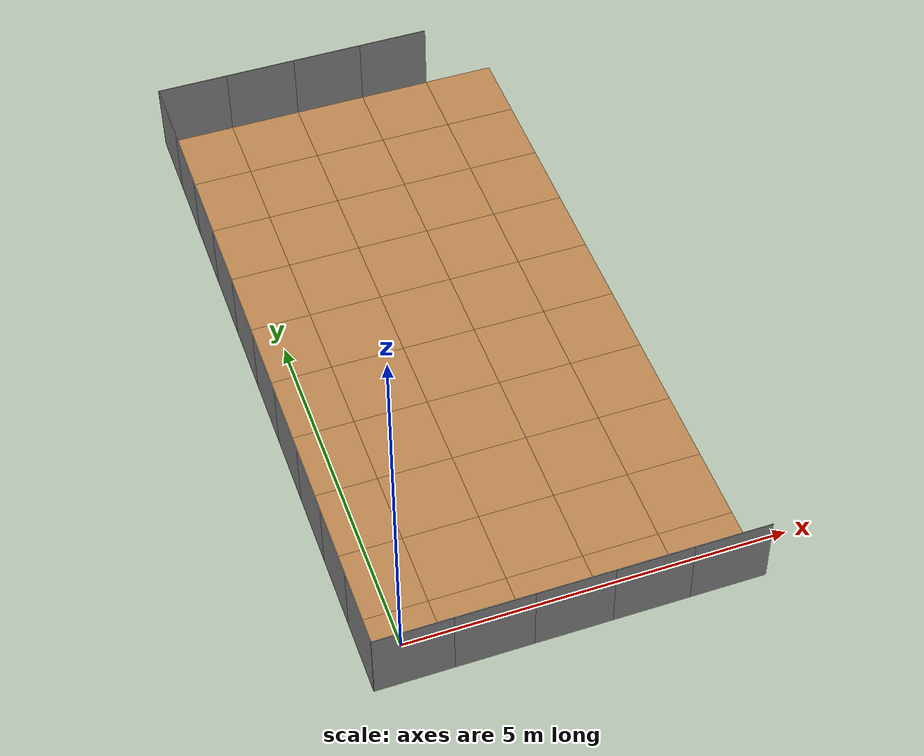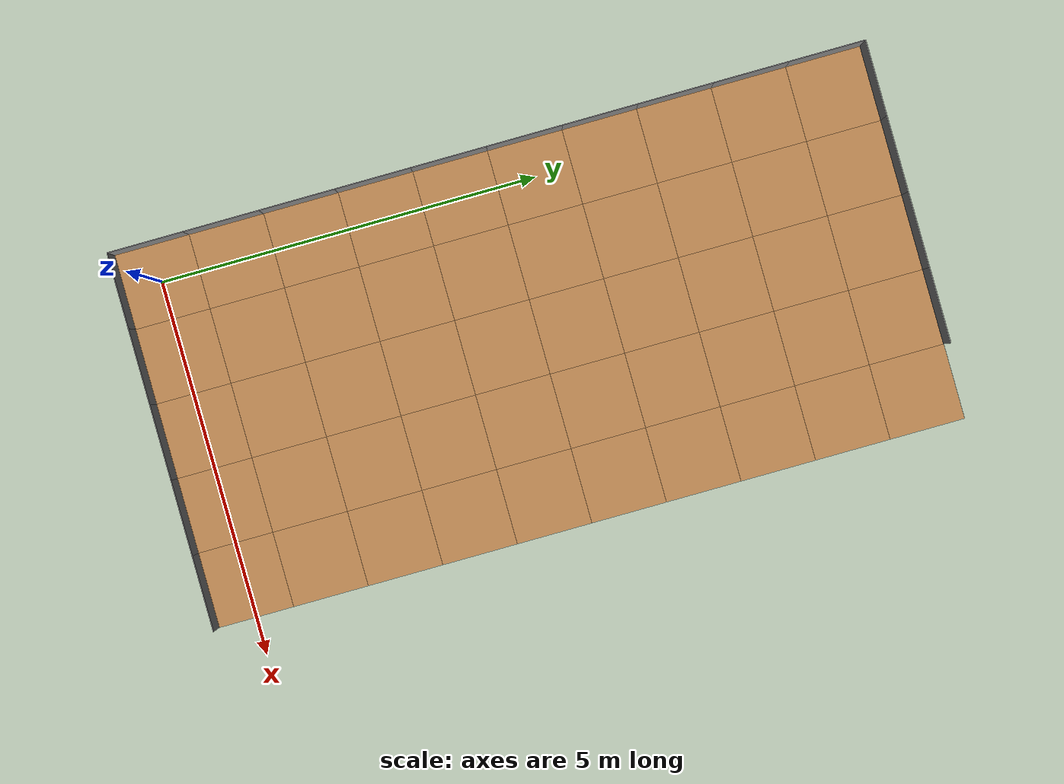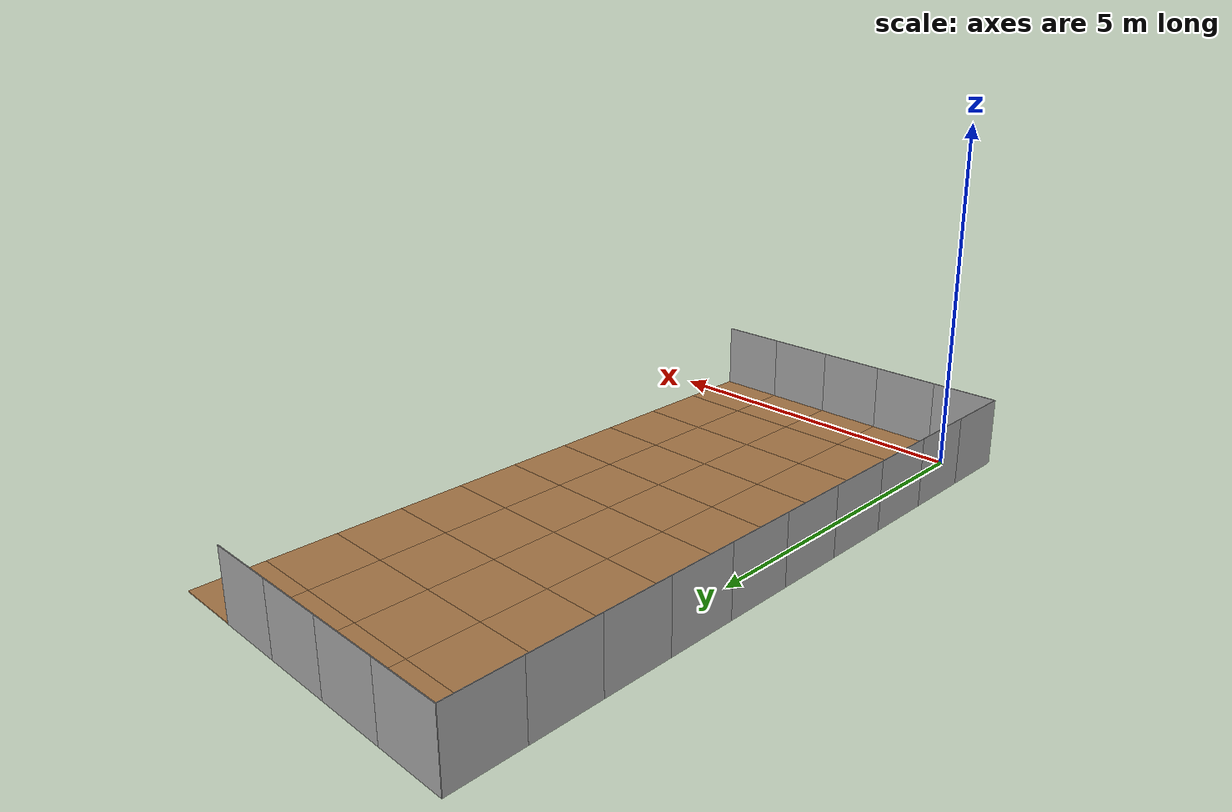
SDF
<sdf version="1.5">
 <world name="complexai">
  <include><uri>model://sun</uri></include>
  <model name="floor_0_0_Berlin_Storage_StorageRoom_1">
   <static>true</static>
   <link name="link_floor_0_0_Berlin_Storage_StorageRoom_1">
    <collision name="collisionfloor_0_0_Berlin_Storage_StorageRoom_1">
     <geometry><box><size>1.0 1.0 0.01</size></box></geometry>
    </collision>
    <visual name="visualfloor_0_0_Berlin_Storage_StorageRoom_1">
     <geometry><box><size>1.0 1.0 0.01</size></box></geometry>
     <material>
      <script><uri>file://media/materials/scripts/gazebo.material</uri><name>Gazebo/WoodFloor</name></script>
     </material>
    </visual>
   </link>
  </model>
  <model name="wall_left_0_0_Berlin_Storage_StorageRoom_1">
   <pose>-0.5 0.0 0.5 0.0 0.0 1.5707963</pose>
   <static>true</static>
   <link name="link_wall_left_0_0_Berlin_Storage_StorageRoom_1">
    <collision name="collisionwall_left_0_0_Berlin_Storage_StorageRoom_1">
     <geometry><box><size>1.0 0.01 1.0</size></box></geometry>
    </collision>
    <visual name="visualwall_left_0_0_Berlin_Storage_StorageRoom_1">
     <geometry><box><size>1.0 0.01 1.0</size></box></geometry>
     <material>
      <script><uri>file://media/materials/scripts/gazebo.material</uri><name>Gazebo/Grey</name></script>
     </material>
    </visual>
   </link>
  </model>
  <model name="wall_bottom_0_0_Berlin_Storage_StorageRoom_1">
   <pose>0.0 -0.5 0.5 0.0 0.0 0.0</pose>
   <static>true</static>
   <link name="link_wall_bottom_0_0_Berlin_Storage_StorageRoom_1">
    <collision name="collisionwall_bottom_0_0_Berlin_Storage_StorageRoom_1">
     <geometry><box><size>1.0 0.01 1.0</size></box></geometry>
    </collision>
    <visual name="visualwall_bottom_0_0_Berlin_Storage_StorageRoom_1">
     <geometry><box><size>1.0 0.01 1.0</size></box></geometry>
     <material>
      <script><uri>file://media/materials/scripts/gazebo.material</uri><name>Gazebo/Grey</name></script>
     </material>
    </visual>
   </link>
  </model>
  <model name="floor_0_1_Berlin_Storage_StorageRoom_1">
   <pose>0.0 1.0 0.0 0.0 0.0 0.0</pose>
   <static>true</static>
   <link name="link_floor_0_1_Berlin_Storage_StorageRoom_1">
    <collision name="collisionfloor_0_1_Berlin_Storage_StorageRoom_1">
     <geometry><box><size>1.0 1.0 0.01</size></box></geometry>
    </collision>
    <visual name="visualfloor_0_1_Berlin_Storage_StorageRoom_1">
     <geometry><box><size>1.0 1.0 0.01</size></box></geometry>
     <material>
      <script><uri>file://media/materials/scripts/gazebo.material</uri><name>Gazebo/WoodFloor</name></script>
     </material>
    </visual>
   </link>
  </model>
  <model name="wall_left_0_1_Berlin_Storage_StorageRoom_1">
   <pose>-0.5 1.0 0.5 0.0 0.0 1.5707963</pose>
   <static>true</static>
   <link name="link_wall_left_0_1_Berlin_Storage_StorageRoom_1">
    <collision name="collisionwall_left_0_1_Berlin_Storage_StorageRoom_1">
     <geometry><box><size>1.0 0.01 1.0</size></box></geometry>
    </collision>
    <visual name="visualwall_left_0_1_Berlin_Storage_StorageRoom_1">
     <geometry><box><size>1.0 0.01 1.0</size></box></geometry>
     <material>
      <script><uri>file://media/materials/scripts/gazebo.material</uri><name>Gazebo/Grey</name></script>
     </material>
    </visual>
   </link>
  </model>
  <model name="floor_0_0_Berlin_Storage_StorageRoom_1">
   <static>true</static>
   <link name="link_floor_0_0_Berlin_Storage_StorageRoom_1">
    <collision name="collisionfloor_0_0_Berlin_Storage_StorageRoom_1">
     <geometry><box><size>1.0 1.0 0.01</size></box></geometry>
    </collision>
    <visual name="visualfloor_0_0_Berlin_Storage_StorageRoom_1">
     <geometry><box><size>1.0 1.0 0.01</size></box></geometry>
     <material>
      <script><uri>file://media/materials/scripts/gazebo.material</uri><name>Gazebo/WoodFloor</name></script>
     </material>
    </visual>
   </link>
  </model>
  <model name="wall_left_0_0_Berlin_Storage_StorageRoom_1">
   <pose>-0.5 0.0 0.5 0.0 0.0 1.5707963</pose>
   <static>true</static>
   <link name="link_wall_left_0_0_Berlin_Storage_StorageRoom_1">
    <collision name="collisionwall_left_0_0_Berlin_Storage_StorageRoom_1">
     <geometry><box><size>1.0 0.01 1.0</size></box></geometry>
    </collision>
    <visual name="visualwall_left_0_0_Berlin_Storage_StorageRoom_1">
     <geometry><box><size>1.0 0.01 1.0</size></box></geometry>
     <material>
      <script><uri>file://media/materials/scripts/gazebo.material</uri><name>Gazebo/Grey</name></script>
     </material>
    </visual>
   </link>
  </model>
  <model name="wall_bottom_0_0_Berlin_Storage_StorageRoom_1">
   <pose>0.0 -0.5 0.5 0.0 0.0 0.0</pose>
   <static>true</static>
   <link name="link_wall_bottom_0_0_Berlin_Storage_StorageRoom_1">
    <collision name="collisionwall_bottom_0_0_Berlin_Storage_StorageRoom_1">
     <geometry><box><size>1.0 0.01 1.0</size></box></geometry>
    </collision>
    <visual name="visualwall_bottom_0_0_Berlin_Storage_StorageRoom_1">
     <geometry><box><size>1.0 0.01 1.0</size></box></geometry>
     <material>
      <script><uri>file://media/materials/scripts/gazebo.material</uri><name>Gazebo/Grey</name></script>
     </material>
    </visual>
   </link>
  </model>
  <model name="floor_0_2_Berlin_Storage_StorageRoom_1">
   <pose>0.0 2.0 0.0 0.0 0.0 0.0</pose>
   <static>true</static>
   <link name="link_floor_0_2_Berlin_Storage_StorageRoom_1">
    <collision name="collisionfloor_0_2_Berlin_Storage_StorageRoom_1">
     <geometry><box><size>1.0 1.0 0.01</size></box></geometry>
    </collision>
    <visual name="visualfloor_0_2_Berlin_Storage_StorageRoom_1">
     <geometry><box><size>1.0 1.0 0.01</size></box></geometry>
     <material>
      <script><uri>file://media/materials/scripts/gazebo.material</uri><name>Gazebo/WoodFloor</name></script>
     </material>
    </visual>
   </link>
  </model>
  <model name="wall_left_0_2_Berlin_Storage_StorageRoom_1">
   <pose>-0.5 2.0 0.5 0.0 0.0 1.5707963</pose>
   <static>true</static>
   <link name="link_wall_left_0_2_Berlin_Storage_StorageRoom_1">
    <collision name="collisionwall_left_0_2_Berlin_Storage_StorageRoom_1">
     <geometry><box><size>1.0 0.01 1.0</size></box></geometry>
    </collision>
    <visual name="visualwall_left_0_2_Berlin_Storage_StorageRoom_1">
     <geometry><box><size>1.0 0.01 1.0</size></box></geometry>
     <material>
      <script><uri>file://media/materials/scripts/gazebo.material</uri><name>Gazebo/Grey</name></script>
     </material>
    </visual>
   </link>
  </model>
  <model name="floor_0_3_Berlin_Storage_StorageRoom_1">
   <pose>0.0 3.0 0.0 0.0 0.0 0.0</pose>
   <static>true</static>
   <link name="link_floor_0_3_Berlin_Storage_StorageRoom_1">
    <collision name="collisionfloor_0_3_Berlin_Storage_StorageRoom_1">
     <geometry><box><size>1.0 1.0 0.01</size></box></geometry>
    </collision>
    <visual name="visualfloor_0_3_Berlin_Storage_StorageRoom_1">
     <geometry><box><size>1.0 1.0 0.01</size></box></geometry>
     <material>
      <script><uri>file://media/materials/scripts/gazebo.material</uri><name>Gazebo/WoodFloor</name></script>
     </material>
    </visual>
   </link>
  </model>
  <model name="wall_left_0_3_Berlin_Storage_StorageRoom_1">
   <pose>-0.5 3.0 0.5 0.0 0.0 1.5707963</pose>
   <static>true</static>
   <link name="link_wall_left_0_3_Berlin_Storage_StorageRoom_1">
    <collision name="collisionwall_left_0_3_Berlin_Storage_StorageRoom_1">
     <geometry><box><size>1.0 0.01 1.0</size></box></geometry>
    </collision>
    <visual name="visualwall_left_0_3_Berlin_Storage_StorageRoom_1">
     <geometry><box><size>1.0 0.01 1.0</size></box></geometry>
     <material>
      <script><uri>file://media/materials/scripts/gazebo.material</uri><name>Gazebo/Grey</name></script>
     </material>
    </visual>
   </link>
  </model>
  <model name="floor_0_4_Berlin_Storage_StorageRoom_1">
   <pose>0.0 4.0 0.0 0.0 0.0 0.0</pose>
   <static>true</static>
   <link name="link_floor_0_4_Berlin_Storage_StorageRoom_1">
    <collision name="collisionfloor_0_4_Berlin_Storage_StorageRoom_1">
     <geometry><box><size>1.0 1.0 0.01</size></box></geometry>
    </collision>
    <visual name="visualfloor_0_4_Berlin_Storage_StorageRoom_1">
     <geometry><box><size>1.0 1.0 0.01</size></box></geometry>
     <material>
      <script><uri>file://media/materials/scripts/gazebo.material</uri><name>Gazebo/WoodFloor</name></script>
     </material>
    </visual>
   </link>
  </model>
  <model name="wall_left_0_4_Berlin_Storage_StorageRoom_1">
   <pose>-0.5 4.0 0.5 0.0 0.0 1.5707963</pose>
   <static>true</static>
   <link name="link_wall_left_0_4_Berlin_Storage_StorageRoom_1">
    <collision name="collisionwall_left_0_4_Berlin_Storage_StorageRoom_1">
     <geometry><box><size>1.0 0.01 1.0</size></box></geometry>
    </collision>
    <visual name="visualwall_left_0_4_Berlin_Storage_StorageRoom_1">
     <geometry><box><size>1.0 0.01 1.0</size></box></geometry>
     <material>
      <script><uri>file://media/materials/scripts/gazebo.material</uri><name>Gazebo/Grey</name></script>
     </material>
    </visual>
   </link>
  </model>
  <model name="floor_0_5_Berlin_Storage_StorageRoom_1">
   <pose>0.0 5.0 0.0 0.0 0.0 0.0</pose>
   <static>true</static>
   <link name="link_floor_0_5_Berlin_Storage_StorageRoom_1">
    <collision name="collisionfloor_0_5_Berlin_Storage_StorageRoom_1">
     <geometry><box><size>1.0 1.0 0.01</size></box></geometry>
    </collision>
    <visual name="visualfloor_0_5_Berlin_Storage_StorageRoom_1">
     <geometry><box><size>1.0 1.0 0.01</size></box></geometry>
     <material>
      <script><uri>file://media/materials/scripts/gazebo.material</uri><name>Gazebo/WoodFloor</name></script>
     </material>
    </visual>
   </link>
  </model>
  <model name="wall_left_0_5_Berlin_Storage_StorageRoom_1">
   <pose>-0.5 5.0 0.5 0.0 0.0 1.5707963</pose>
   <static>true</static>
   <link name="link_wall_left_0_5_Berlin_Storage_StorageRoom_1">
    <collision name="collisionwall_left_0_5_Berlin_Storage_StorageRoom_1">
     <geometry><box><size>1.0 0.01 1.0</size></box></geometry>
    </collision>
    <visual name="visualwall_left_0_5_Berlin_Storage_StorageRoom_1">
     <geometry><box><size>1.0 0.01 1.0</size></box></geometry>
     <material>
      <script><uri>file://media/materials/scripts/gazebo.material</uri><name>Gazebo/Grey</name></script>
     </material>
    </visual>
   </link>
  </model>
  <model name="floor_0_6_Berlin_Storage_StorageRoom_1">
   <pose>0.0 6.0 0.0 0.0 0.0 0.0</pose>
   <static>true</static>
   <link name="link_floor_0_6_Berlin_Storage_StorageRoom_1">
    <collision name="collisionfloor_0_6_Berlin_Storage_StorageRoom_1">
     <geometry><box><size>1.0 1.0 0.01</size></box></geometry>
    </collision>
    <visual name="visualfloor_0_6_Berlin_Storage_StorageRoom_1">
     <geometry><box><size>1.0 1.0 0.01</size></box></geometry>
     <material>
      <script><uri>file://media/materials/scripts/gazebo.material</uri><name>Gazebo/WoodFloor</name></script>
     </material>
    </visual>
   </link>
  </model>
  <model name="wall_left_0_6_Berlin_Storage_StorageRoom_1">
   <pose>-0.5 6.0 0.5 0.0 0.0 1.5707963</pose>
   <static>true</static>
   <link name="link_wall_left_0_6_Berlin_Storage_StorageRoom_1">
    <collision name="collisionwall_left_0_6_Berlin_Storage_StorageRoom_1">
     <geometry><box><size>1.0 0.01 1.0</size></box></geometry>
    </collision>
    <visual name="visualwall_left_0_6_Berlin_Storage_StorageRoom_1">
     <geometry><box><size>1.0 0.01 1.0</size></box></geometry>
     <material>
      <script><uri>file://media/materials/scripts/gazebo.material</uri><name>Gazebo/Grey</name></script>
     </material>
    </visual>
   </link>
  </model>
  <model name="floor_0_7_Berlin_Storage_StorageRoom_1">
   <pose>0.0 7.0 0.0 0.0 0.0 0.0</pose>
   <static>true</static>
   <link name="link_floor_0_7_Berlin_Storage_StorageRoom_1">
    <collision name="collisionfloor_0_7_Berlin_Storage_StorageRoom_1">
     <geometry><box><size>1.0 1.0 0.01</size></box></geometry>
    </collision>
    <visual name="visualfloor_0_7_Berlin_Storage_StorageRoom_1">
     <geometry><box><size>1.0 1.0 0.01</size></box></geometry>
     <material>
      <script><uri>file://media/materials/scripts/gazebo.material</uri><name>Gazebo/WoodFloor</name></script>
     </material>
    </visual>
   </link>
  </model>
  <model name="wall_left_0_7_Berlin_Storage_StorageRoom_1">
   <pose>-0.5 7.0 0.5 0.0 0.0 1.5707963</pose>
   <static>true</static>
   <link name="link_wall_left_0_7_Berlin_Storage_StorageRoom_1">
    <collision name="collisionwall_left_0_7_Berlin_Storage_StorageRoom_1">
     <geometry><box><size>1.0 0.01 1.0</size></box></geometry>
    </collision>
    <visual name="visualwall_left_0_7_Berlin_Storage_StorageRoom_1">
     <geometry><box><size>1.0 0.01 1.0</size></box></geometry>
     <material>
      <script><uri>file://media/materials/scripts/gazebo.material</uri><name>Gazebo/Grey</name></script>
     </material>
    </visual>
   </link>
  </model>
  <model name="floor_0_8_Berlin_Storage_StorageRoom_1">
   <pose>0.0 8.0 0.0 0.0 0.0 0.0</pose>
   <static>true</static>
   <link name="link_floor_0_8_Berlin_Storage_StorageRoom_1">
    <collision name="collisionfloor_0_8_Berlin_Storage_StorageRoom_1">
     <geometry><box><size>1.0 1.0 0.01</size></box></geometry>
    </collision>
    <visual name="visualfloor_0_8_Berlin_Storage_StorageRoom_1">
     <geometry><box><size>1.0 1.0 0.01</size></box></geometry>
     <material>
      <script><uri>file://media/materials/scripts/gazebo.material</uri><name>Gazebo/WoodFloor</name></script>
     </material>
    </visual>
   </link>
  </model>
  <model name="wall_left_0_8_Berlin_Storage_StorageRoom_1">
   <pose>-0.5 8.0 0.5 0.0 0.0 1.5707963</pose>
   <static>true</static>
   <link name="link_wall_left_0_8_Berlin_Storage_StorageRoom_1">
    <collision name="collisionwall_left_0_8_Berlin_Storage_StorageRoom_1">
     <geometry><box><size>1.0 0.01 1.0</size></box></geometry>
    </collision>
    <visual name="visualwall_left_0_8_Berlin_Storage_StorageRoom_1">
     <geometry><box><size>1.0 0.01 1.0</size></box></geometry>
     <material>
      <script><uri>file://media/materials/scripts/gazebo.material</uri><name>Gazebo/Grey</name></script>
     </material>
    </visual>
   </link>
  </model>
  <model name="floor_0_9_Berlin_Storage_StorageRoom_1">
   <pose>0.0 9.0 0.0 0.0 0.0 0.0</pose>
   <static>true</static>
   <link name="link_floor_0_9_Berlin_Storage_StorageRoom_1">
    <collision name="collisionfloor_0_9_Berlin_Storage_StorageRoom_1">
     <geometry><box><size>1.0 1.0 0.01</size></box></geometry>
    </collision>
    <visual name="visualfloor_0_9_Berlin_Storage_StorageRoom_1">
     <geometry><box><size>1.0 1.0 0.01</size></box></geometry>
     <material>
      <script><uri>file://media/materials/scripts/gazebo.material</uri><name>Gazebo/WoodFloor</name></script>
     </material>
    </visual>
   </link>
  </model>
  <model name="wall_left_0_9_Berlin_Storage_StorageRoom_1">
   <pose>-0.5 9.0 0.5 0.0 0.0 1.5707963</pose>
   <static>true</static>
   <link name="link_wall_left_0_9_Berlin_Storage_StorageRoom_1">
    <collision name="collisionwall_left_0_9_Berlin_Storage_StorageRoom_1">
     <geometry><box><size>1.0 0.01 1.0</size></box></geometry>
    </collision>
    <visual name="visualwall_left_0_9_Berlin_Storage_StorageRoom_1">
     <geometry><box><size>1.0 0.01 1.0</size></box></geometry>
     <material>
      <script><uri>file://media/materials/scripts/gazebo.material</uri><name>Gazebo/Grey</name></script>
     </material>
    </visual>
   </link>
  </model>
  <model name="wall_top_0_9_Berlin_Storage_StorageRoom_1">
   <pose>0.0 9.5 0.5 0.0 0.0 0.0</pose>
   <static>true</static>
   <link name="link_wall_top_0_9_Berlin_Storage_StorageRoom_1">
    <collision name="collisionwall_top_0_9_Berlin_Storage_StorageRoom_1">
     <geometry><box><size>1.0 0.01 1.0</size></box></geometry>
    </collision>
    <visual name="visualwall_top_0_9_Berlin_Storage_StorageRoom_1">
     <geometry><box><size>1.0 0.01 1.0</size></box></geometry>
     <material>
      <script><uri>file://media/materials/scripts/gazebo.material</uri><name>Gazebo/Grey</name></script>
     </material>
    </visual>
   </link>
  </model>
  <model name="floor_1_9_Berlin_Storage_StorageRoom_1">
   <pose>1.0 9.0 0.0 0.0 0.0 0.0</pose>
   <static>true</static>
   <link name="link_floor_1_9_Berlin_Storage_StorageRoom_1">
    <collision name="collisionfloor_1_9_Berlin_Storage_StorageRoom_1">
     <geometry><box><size>1.0 1.0 0.01</size></box></geometry>
    </collision>
    <visual name="visualfloor_1_9_Berlin_Storage_StorageRoom_1">
     <geometry><box><size>1.0 1.0 0.01</size></box></geometry>
     <material>
      <script><uri>file://media/materials/scripts/gazebo.material</uri><name>Gazebo/WoodFloor</name></script>
     </material>
    </visual>
   </link>
  </model>
  <model name="wall_top_1_9_Berlin_Storage_StorageRoom_1">
   <pose>1.0 9.5 0.5 0.0 0.0 0.0</pose>
   <static>true</static>
   <link name="link_wall_top_1_9_Berlin_Storage_StorageRoom_1">
    <collision name="collisionwall_top_1_9_Berlin_Storage_StorageRoom_1">
     <geometry><box><size>1.0 0.01 1.0</size></box></geometry>
    </collision>
    <visual name="visualwall_top_1_9_Berlin_Storage_StorageRoom_1">
     <geometry><box><size>1.0 0.01 1.0</size></box></geometry>
     <material>
      <script><uri>file://media/materials/scripts/gazebo.material</uri><name>Gazebo/Grey</name></script>
     </material>
    </visual>
   </link>
  </model>
  <model name="floor_2_9_Berlin_Storage_StorageRoom_1">
   <pose>2.0 9.0 0.0 0.0 0.0 0.0</pose>
   <static>true</static>
   <link name="link_floor_2_9_Berlin_Storage_StorageRoom_1">
    <collision name="collisionfloor_2_9_Berlin_Storage_StorageRoom_1">
     <geometry><box><size>1.0 1.0 0.01</size></box></geometry>
    </collision>
    <visual name="visualfloor_2_9_Berlin_Storage_StorageRoom_1">
     <geometry><box><size>1.0 1.0 0.01</size></box></geometry>
     <material>
      <script><uri>file://media/materials/scripts/gazebo.material</uri><name>Gazebo/WoodFloor</name></script>
     </material>
    </visual>
   </link>
  </model>
  <model name="wall_top_2_9_Berlin_Storage_StorageRoom_1">
   <pose>2.0 9.5 0.5 0.0 0.0 0.0</pose>
   <static>true</static>
   <link name="link_wall_top_2_9_Berlin_Storage_StorageRoom_1">
    <collision name="collisionwall_top_2_9_Berlin_Storage_StorageRoom_1">
     <geometry><box><size>1.0 0.01 1.0</size></box></geometry>
    </collision>
    <visual name="visualwall_top_2_9_Berlin_Storage_StorageRoom_1">
     <geometry><box><size>1.0 0.01 1.0</size></box></geometry>
     <material>
      <script><uri>file://media/materials/scripts/gazebo.material</uri><name>Gazebo/Grey</name></script>
     </material>
    </visual>
   </link>
  </model>
  <model name="floor_2_8_Berlin_Storage_StorageRoom_1">
   <pose>2.0 8.0 0.0 0.0 0.0 0.0</pose>
   <static>true</static>
   <link name="link_floor_2_8_Berlin_Storage_StorageRoom_1">
    <collision name="collisionfloor_2_8_Berlin_Storage_StorageRoom_1">
     <geometry><box><size>1.0 1.0 0.01</size></box></geometry>
    </collision>
    <visual name="visualfloor_2_8_Berlin_Storage_StorageRoom_1">
     <geometry><box><size>1.0 1.0 0.01</size></box></geometry>
     <material>
      <script><uri>file://media/materials/scripts/gazebo.material</uri><name>Gazebo/WoodFloor</name></script>
     </material>
    </visual>
   </link>
  </model>
  <model name="floor_2_7_Berlin_Storage_StorageRoom_1">
   <pose>2.0 7.0 0.0 0.0 0.0 0.0</pose>
   <static>true</static>
   <link name="link_floor_2_7_Berlin_Storage_StorageRoom_1">
    <collision name="collisionfloor_2_7_Berlin_Storage_StorageRoom_1">
     <geometry><box><size>1.0 1.0 0.01</size></box></geometry>
    </collision>
    <visual name="visualfloor_2_7_Berlin_Storage_StorageRoom_1">
     <geometry><box><size>1.0 1.0 0.01</size></box></geometry>
     <material>
      <script><uri>file://media/materials/scripts/gazebo.material</uri><name>Gazebo/WoodFloor</name></script>
     </material>
    </visual>
   </link>
  </model>
  <model name="floor_2_6_Berlin_Storage_StorageRoom_1">
   <pose>2.0 6.0 0.0 0.0 0.0 0.0</pose>
   <static>true</static>
   <link name="link_floor_2_6_Berlin_Storage_StorageRoom_1">
    <collision name="collisionfloor_2_6_Berlin_Storage_StorageRoom_1">
     <geometry><box><size>1.0 1.0 0.01</size></box></geometry>
    </collision>
    <visual name="visualfloor_2_6_Berlin_Storage_StorageRoom_1">
     <geometry><box><size>1.0 1.0 0.01</size></box></geometry>
     <material>
      <script><uri>file://media/materials/scripts/gazebo.material</uri><name>Gazebo/WoodFloor</name></script>
     </material>
    </visual>
   </link>
  </model>
  <model name="floor_2_5_Berlin_Storage_StorageRoom_1">
   <pose>2.0 5.0 0.0 0.0 0.0 0.0</pose>
   <static>true</static>
   <link name="link_floor_2_5_Berlin_Storage_StorageRoom_1">
    <collision name="collisionfloor_2_5_Berlin_Storage_StorageRoom_1">
     <geometry><box><size>1.0 1.0 0.01</size></box></geometry>
    </collision>
    <visual name="visualfloor_2_5_Berlin_Storage_StorageRoom_1">
     <geometry><box><size>1.0 1.0 0.01</size></box></geometry>
     <material>
      <script><uri>file://media/materials/scripts/gazebo.material</uri><name>Gazebo/WoodFloor</name></script>
     </material>
    </visual>
   </link>
  </model>
  <model name="floor_2_4_Berlin_Storage_StorageRoom_1">
   <pose>2.0 4.0 0.0 0.0 0.0 0.0</pose>
   <static>true</static>
   <link name="link_floor_2_4_Berlin_Storage_StorageRoom_1">
    <collision name="collisionfloor_2_4_Berlin_Storage_StorageRoom_1">
     <geometry><box><size>1.0 1.0 0.01</size></box></geometry>
    </collision>
    <visual name="visualfloor_2_4_Berlin_Storage_StorageRoom_1">
     <geometry><box><size>1.0 1.0 0.01</size></box></geometry>
     <material>
      <script><uri>file://media/materials/scripts/gazebo.material</uri><name>Gazebo/WoodFloor</name></script>
     </material>
    </visual>
   </link>
  </model>
  <model name="floor_2_3_Berlin_Storage_StorageRoom_1">
   <pose>2.0 3.0 0.0 0.0 0.0 0.0</pose>
   <static>true</static>
   <link name="link_floor_2_3_Berlin_Storage_StorageRoom_1">
    <collision name="collisionfloor_2_3_Berlin_Storage_StorageRoom_1">
     <geometry><box><size>1.0 1.0 0.01</size></box></geometry>
    </collision>
    <visual name="visualfloor_2_3_Berlin_Storage_StorageRoom_1">
     <geometry><box><size>1.0 1.0 0.01</size></box></geometry>
     <material>
      <script><uri>file://media/materials/scripts/gazebo.material</uri><name>Gazebo/WoodFloor</name></script>
     </material>
    </visual>
   </link>
  </model>
  <model name="floor_2_2_Berlin_Storage_StorageRoom_1">
   <pose>2.0 2.0 0.0 0.0 0.0 0.0</pose>
   <static>true</static>
   <link name="link_floor_2_2_Berlin_Storage_StorageRoom_1">
    <collision name="collisionfloor_2_2_Berlin_Storage_StorageRoom_1">
     <geometry><box><size>1.0 1.0 0.01</size></box></geometry>
    </collision>
    <visual name="visualfloor_2_2_Berlin_Storage_StorageRoom_1">
     <geometry><box><size>1.0 1.0 0.01</size></box></geometry>
     <material>
      <script><uri>file://media/materials/scripts/gazebo.material</uri><name>Gazebo/WoodFloor</name></script>
     </material>
    </visual>
   </link>
  </model>
  <model name="floor_2_1_Berlin_Storage_StorageRoom_1">
   <pose>2.0 1.0 0.0 0.0 0.0 0.0</pose>
   <static>true</static>
   <link name="link_floor_2_1_Berlin_Storage_StorageRoom_1">
    <collision name="collisionfloor_2_1_Berlin_Storage_StorageRoom_1">
     <geometry><box><size>1.0 1.0 0.01</size></box></geometry>
    </collision>
    <visual name="visualfloor_2_1_Berlin_Storage_StorageRoom_1">
     <geometry><box><size>1.0 1.0 0.01</size></box></geometry>
     <material>
      <script><uri>file://media/materials/scripts/gazebo.material</uri><name>Gazebo/WoodFloor</name></script>
     </material>
    </visual>
   </link>
  </model>
  <model name="floor_2_0_Berlin_Storage_StorageRoom_1">
   <pose>2.0 0.0 0.0 0.0 0.0 0.0</pose>
   <static>true</static>
   <link name="link_floor_2_0_Berlin_Storage_StorageRoom_1">
    <collision name="collisionfloor_2_0_Berlin_Storage_StorageRoom_1">
     <geometry><box><size>1.0 1.0 0.01</size></box></geometry>
    </collision>
    <visual name="visualfloor_2_0_Berlin_Storage_StorageRoom_1">
     <geometry><box><size>1.0 1.0 0.01</size></box></geometry>
     <material>
      <script><uri>file://media/materials/scripts/gazebo.material</uri><name>Gazebo/WoodFloor</name></script>
     </material>
    </visual>
   </link>
  </model>
  <model name="wall_bottom_2_0_Berlin_Storage_StorageRoom_1">
   <pose>2.0 -0.5 0.5 0.0 0.0 0.0</pose>
   <static>true</static>
   <link name="link_wall_bottom_2_0_Berlin_Storage_StorageRoom_1">
    <collision name="collisionwall_bottom_2_0_Berlin_Storage_StorageRoom_1">
     <geometry><box><size>1.0 0.01 1.0</size></box></geometry>
    </collision>
    <visual name="visualwall_bottom_2_0_Berlin_Storage_StorageRoom_1">
     <geometry><box><size>1.0 0.01 1.0</size></box></geometry>
     <material>
      <script><uri>file://media/materials/scripts/gazebo.material</uri><name>Gazebo/Grey</name></script>
     </material>
    </visual>
   </link>
  </model>
  <model name="floor_3_0_Berlin_Storage_StorageRoom_1">
   <pose>3.0 0.0 0.0 0.0 0.0 0.0</pose>
   <static>true</static>
   <link name="link_floor_3_0_Berlin_Storage_StorageRoom_1">
    <collision name="collisionfloor_3_0_Berlin_Storage_StorageRoom_1">
     <geometry><box><size>1.0 1.0 0.01</size></box></geometry>
    </collision>
    <visual name="visualfloor_3_0_Berlin_Storage_StorageRoom_1">
     <geometry><box><size>1.0 1.0 0.01</size></box></geometry>
     <material>
      <script><uri>file://media/materials/scripts/gazebo.material</uri><name>Gazebo/WoodFloor</name></script>
     </material>
    </visual>
   </link>
  </model>
  <model name="wall_bottom_3_0_Berlin_Storage_StorageRoom_1">
   <pose>3.0 -0.5 0.5 0.0 0.0 0.0</pose>
   <static>true</static>
   <link name="link_wall_bottom_3_0_Berlin_Storage_StorageRoom_1">
    <collision name="collisionwall_bottom_3_0_Berlin_Storage_StorageRoom_1">
     <geometry><box><size>1.0 0.01 1.0</size></box></geometry>
    </collision>
    <visual name="visualwall_bottom_3_0_Berlin_Storage_StorageRoom_1">
     <geometry><box><size>1.0 0.01 1.0</size></box></geometry>
     <material>
      <script><uri>file://media/materials/scripts/gazebo.material</uri><name>Gazebo/Grey</name></script>
     </material>
    </visual>
   </link>
  </model>
  <model name="floor_4_0_Berlin_Storage_StorageRoom_1">
   <pose>4.0 0.0 0.0 0.0 0.0 0.0</pose>
   <static>true</static>
   <link name="link_floor_4_0_Berlin_Storage_StorageRoom_1">
    <collision name="collisionfloor_4_0_Berlin_Storage_StorageRoom_1">
     <geometry><box><size>1.0 1.0 0.01</size></box></geometry>
    </collision>
    <visual name="visualfloor_4_0_Berlin_Storage_StorageRoom_1">
     <geometry><box><size>1.0 1.0 0.01</size></box></geometry>
     <material>
      <script><uri>file://media/materials/scripts/gazebo.material</uri><name>Gazebo/WoodFloor</name></script>
     </material>
    </visual>
   </link>
  </model>
  <model name="wall_bottom_4_0_Berlin_Storage_StorageRoom_1">
   <pose>4.0 -0.5 0.5 0.0 0.0 0.0</pose>
   <static>true</static>
   <link name="link_wall_bottom_4_0_Berlin_Storage_StorageRoom_1">
    <collision name="collisionwall_bottom_4_0_Berlin_Storage_StorageRoom_1">
     <geometry><box><size>1.0 0.01 1.0</size></box></geometry>
    </collision>
    <visual name="visualwall_bottom_4_0_Berlin_Storage_StorageRoom_1">
     <geometry><box><size>1.0 0.01 1.0</size></box></geometry>
     <material>
      <script><uri>file://media/materials/scripts/gazebo.material</uri><name>Gazebo/Grey</name></script>
     </material>
    </visual>
   </link>
  </model>
  <model name="floor_4_1_Berlin_Storage_StorageRoom_1">
   <pose>4.0 1.0 0.0 0.0 0.0 0.0</pose>
   <static>true</static>
   <link name="link_floor_4_1_Berlin_Storage_StorageRoom_1">
    <collision name="collisionfloor_4_1_Berlin_Storage_StorageRoom_1">
     <geometry><box><size>1.0 1.0 0.01</size></box></geometry>
    </collision>
    <visual name="visualfloor_4_1_Berlin_Storage_StorageRoom_1">
     <geometry><box><size>1.0 1.0 0.01</size></box></geometry>
     <material>
      <script><uri>file://media/materials/scripts/gazebo.material</uri><name>Gazebo/WoodFloor</name></script>
     </material>
    </visual>
   </link>
  </model>
  <model name="floor_4_2_Berlin_Storage_StorageRoom_1">
   <pose>4.0 2.0 0.0 0.0 0.0 0.0</pose>
   <static>true</static>
   <link name="link_floor_4_2_Berlin_Storage_StorageRoom_1">
    <collision name="collisionfloor_4_2_Berlin_Storage_StorageRoom_1">
     <geometry><box><size>1.0 1.0 0.01</size></box></geometry>
    </collision>
    <visual name="visualfloor_4_2_Berlin_Storage_StorageRoom_1">
     <geometry><box><size>1.0 1.0 0.01</size></box></geometry>
     <material>
      <script><uri>file://media/materials/scripts/gazebo.material</uri><name>Gazebo/WoodFloor</name></script>
     </material>
    </visual>
   </link>
  </model>
  <model name="floor_4_3_Berlin_Storage_StorageRoom_1">
   <pose>4.0 3.0 0.0 0.0 0.0 0.0</pose>
   <static>true</static>
   <link name="link_floor_4_3_Berlin_Storage_StorageRoom_1">
    <collision name="collisionfloor_4_3_Berlin_Storage_StorageRoom_1">
     <geometry><box><size>1.0 1.0 0.01</size></box></geometry>
    </collision>
    <visual name="visualfloor_4_3_Berlin_Storage_StorageRoom_1">
     <geometry><box><size>1.0 1.0 0.01</size></box></geometry>
     <material>
      <script><uri>file://media/materials/scripts/gazebo.material</uri><name>Gazebo/WoodFloor</name></script>
     </material>
    </visual>
   </link>
  </model>
  <model name="floor_4_4_Berlin_Storage_StorageRoom_1">
   <pose>4.0 4.0 0.0 0.0 0.0 0.0</pose>
   <static>true</static>
   <link name="link_floor_4_4_Berlin_Storage_StorageRoom_1">
    <collision name="collisionfloor_4_4_Berlin_Storage_StorageRoom_1">
     <geometry><box><size>1.0 1.0 0.01</size></box></geometry>
    </collision>
    <visual name="visualfloor_4_4_Berlin_Storage_StorageRoom_1">
     <geometry><box><size>1.0 1.0 0.01</size></box></geometry>
     <material>
      <script><uri>file://media/materials/scripts/gazebo.material</uri><name>Gazebo/WoodFloor</name></script>
     </material>
    </visual>
   </link>
  </model>
  <model name="floor_4_5_Berlin_Storage_StorageRoom_1">
   <pose>4.0 5.0 0.0 0.0 0.0 0.0</pose>
   <static>true</static>
   <link name="link_floor_4_5_Berlin_Storage_StorageRoom_1">
    <collision name="collisionfloor_4_5_Berlin_Storage_StorageRoom_1">
     <geometry><box><size>1.0 1.0 0.01</size></box></geometry>
    </collision>
    <visual name="visualfloor_4_5_Berlin_Storage_StorageRoom_1">
     <geometry><box><size>1.0 1.0 0.01</size></box></geometry>
     <material>
      <script><uri>file://media/materials/scripts/gazebo.material</uri><name>Gazebo/WoodFloor</name></script>
     </material>
    </visual>
   </link>
  </model>
  <model name="floor_4_6_Berlin_Storage_StorageRoom_1">
   <pose>4.0 6.0 0.0 0.0 0.0 0.0</pose>
   <static>true</static>
   <link name="link_floor_4_6_Berlin_Storage_StorageRoom_1">
    <collision name="collisionfloor_4_6_Berlin_Storage_StorageRoom_1">
     <geometry><box><size>1.0 1.0 0.01</size></box></geometry>
    </collision>
    <visual name="visualfloor_4_6_Berlin_Storage_StorageRoom_1">
     <geometry><box><size>1.0 1.0 0.01</size></box></geometry>
     <material>
      <script><uri>file://media/materials/scripts/gazebo.material</uri><name>Gazebo/WoodFloor</name></script>
     </material>
    </visual>
   </link>
  </model>
  <model name="floor_4_7_Berlin_Storage_StorageRoom_1">
   <pose>4.0 7.0 0.0 0.0 0.0 0.0</pose>
   <static>true</static>
   <link name="link_floor_4_7_Berlin_Storage_StorageRoom_1">
    <collision name="collisionfloor_4_7_Berlin_Storage_StorageRoom_1">
     <geometry><box><size>1.0 1.0 0.01</size></box></geometry>
    </collision>
    <visual name="visualfloor_4_7_Berlin_Storage_StorageRoom_1">
     <geometry><box><size>1.0 1.0 0.01</size></box></geometry>
     <material>
      <script><uri>file://media/materials/scripts/gazebo.material</uri><name>Gazebo/WoodFloor</name></script>
     </material>
    </visual>
   </link>
  </model>
  <model name="floor_4_8_Berlin_Storage_StorageRoom_1">
   <pose>4.0 8.0 0.0 0.0 0.0 0.0</pose>
   <static>true</static>
   <link name="link_floor_4_8_Berlin_Storage_StorageRoom_1">
    <collision name="collisionfloor_4_8_Berlin_Storage_StorageRoom_1">
     <geometry><box><size>1.0 1.0 0.01</size></box></geometry>
    </collision>
    <visual name="visualfloor_4_8_Berlin_Storage_StorageRoom_1">
     <geometry><box><size>1.0 1.0 0.01</size></box></geometry>
     <material>
      <script><uri>file://media/materials/scripts/gazebo.material</uri><name>Gazebo/WoodFloor</name></script>
     </material>
    </visual>
   </link>
  </model>
  <model name="floor_4_9_Berlin_Storage_StorageRoom_1">
   <pose>4.0 9.0 0.0 0.0 0.0 0.0</pose>
   <static>true</static>
   <link name="link_floor_4_9_Berlin_Storage_StorageRoom_1">
    <collision name="collisionfloor_4_9_Berlin_Storage_StorageRoom_1">
     <geometry><box><size>1.0 1.0 0.01</size></box></geometry>
    </collision>
    <visual name="visualfloor_4_9_Berlin_Storage_StorageRoom_1">
     <geometry><box><size>1.0 1.0 0.01</size></box></geometry>
     <material>
      <script><uri>file://media/materials/scripts/gazebo.material</uri><name>Gazebo/WoodFloor</name></script>
     </material>
    </visual>
   </link>
  </model>
  <model name="floor_3_1_Berlin_Storage_StorageRoom_1">
   <pose>3.0 1.0 0.0 0.0 0.0 0.0</pose>
   <static>true</static>
   <link name="link_floor_3_1_Berlin_Storage_StorageRoom_1">
    <collision name="collisionfloor_3_1_Berlin_Storage_StorageRoom_1">
     <geometry><box><size>1.0 1.0 0.01</size></box></geometry>
    </collision>
    <visual name="visualfloor_3_1_Berlin_Storage_StorageRoom_1">
     <geometry><box><size>1.0 1.0 0.01</size></box></geometry>
     <material>
      <script><uri>file://media/materials/scripts/gazebo.material</uri><name>Gazebo/WoodFloor</name></script>
     </material>
    </visual>
   </link>
  </model>
  <model name="floor_3_2_Berlin_Storage_StorageRoom_1">
   <pose>3.0 2.0 0.0 0.0 0.0 0.0</pose>
   <static>true</static>
   <link name="link_floor_3_2_Berlin_Storage_StorageRoom_1">
    <collision name="collisionfloor_3_2_Berlin_Storage_StorageRoom_1">
     <geometry><box><size>1.0 1.0 0.01</size></box></geometry>
    </collision>
    <visual name="visualfloor_3_2_Berlin_Storage_StorageRoom_1">
     <geometry><box><size>1.0 1.0 0.01</size></box></geometry>
     <material>
      <script><uri>file://media/materials/scripts/gazebo.material</uri><name>Gazebo/WoodFloor</name></script>
     </material>
    </visual>
   </link>
  </model>
  <model name="floor_3_3_Berlin_Storage_StorageRoom_1">
   <pose>3.0 3.0 0.0 0.0 0.0 0.0</pose>
   <static>true</static>
   <link name="link_floor_3_3_Berlin_Storage_StorageRoom_1">
    <collision name="collisionfloor_3_3_Berlin_Storage_StorageRoom_1">
     <geometry><box><size>1.0 1.0 0.01</size></box></geometry>
    </collision>
    <visual name="visualfloor_3_3_Berlin_Storage_StorageRoom_1">
     <geometry><box><size>1.0 1.0 0.01</size></box></geometry>
     <material>
      <script><uri>file://media/materials/scripts/gazebo.material</uri><name>Gazebo/WoodFloor</name></script>
     </material>
    </visual>
   </link>
  </model>
  <model name="floor_3_4_Berlin_Storage_StorageRoom_1">
   <pose>3.0 4.0 0.0 0.0 0.0 0.0</pose>
   <static>true</static>
   <link name="link_floor_3_4_Berlin_Storage_StorageRoom_1">
    <collision name="collisionfloor_3_4_Berlin_Storage_StorageRoom_1">
     <geometry><box><size>1.0 1.0 0.01</size></box></geometry>
    </collision>
    <visual name="visualfloor_3_4_Berlin_Storage_StorageRoom_1">
     <geometry><box><size>1.0 1.0 0.01</size></box></geometry>
     <material>
      <script><uri>file://media/materials/scripts/gazebo.material</uri><name>Gazebo/WoodFloor</name></script>
     </material>
    </visual>
   </link>
  </model>
  <model name="floor_3_5_Berlin_Storage_StorageRoom_1">
   <pose>3.0 5.0 0.0 0.0 0.0 0.0</pose>
   <static>true</static>
   <link name="link_floor_3_5_Berlin_Storage_StorageRoom_1">
    <collision name="collisionfloor_3_5_Berlin_Storage_StorageRoom_1">
     <geometry><box><size>1.0 1.0 0.01</size></box></geometry>
    </collision>
    <visual name="visualfloor_3_5_Berlin_Storage_StorageRoom_1">
     <geometry><box><size>1.0 1.0 0.01</size></box></geometry>
     <material>
      <script><uri>file://media/materials/scripts/gazebo.material</uri><name>Gazebo/WoodFloor</name></script>
     </material>
    </visual>
   </link>
  </model>
  <model name="floor_3_6_Berlin_Storage_StorageRoom_1">
   <pose>3.0 6.0 0.0 0.0 0.0 0.0</pose>
   <static>true</static>
   <link name="link_floor_3_6_Berlin_Storage_StorageRoom_1">
    <collision name="collisionfloor_3_6_Berlin_Storage_StorageRoom_1">
     <geometry><box><size>1.0 1.0 0.01</size></box></geometry>
    </collision>
    <visual name="visualfloor_3_6_Berlin_Storage_StorageRoom_1">
     <geometry><box><size>1.0 1.0 0.01</size></box></geometry>
     <material>
      <script><uri>file://media/materials/scripts/gazebo.material</uri><name>Gazebo/WoodFloor</name></script>
     </material>
    </visual>
   </link>
  </model>
  <model name="floor_3_7_Berlin_Storage_StorageRoom_1">
   <pose>3.0 7.0 0.0 0.0 0.0 0.0</pose>
   <static>true</static>
   <link name="link_floor_3_7_Berlin_Storage_StorageRoom_1">
    <collision name="collisionfloor_3_7_Berlin_Storage_StorageRoom_1">
     <geometry><box><size>1.0 1.0 0.01</size></box></geometry>
    </collision>
    <visual name="visualfloor_3_7_Berlin_Storage_StorageRoom_1">
     <geometry><box><size>1.0 1.0 0.01</size></box></geometry>
     <material>
      <script><uri>file://media/materials/scripts/gazebo.material</uri><name>Gazebo/WoodFloor</name></script>
     </material>
    </visual>
   </link>
  </model>
  <model name="floor_3_8_Berlin_Storage_StorageRoom_1">
   <pose>3.0 8.0 0.0 0.0 0.0 0.0</pose>
   <static>true</static>
   <link name="link_floor_3_8_Berlin_Storage_StorageRoom_1">
    <collision name="collisionfloor_3_8_Berlin_Storage_StorageRoom_1">
     <geometry><box><size>1.0 1.0 0.01</size></box></geometry>
    </collision>
    <visual name="visualfloor_3_8_Berlin_Storage_StorageRoom_1">
     <geometry><box><size>1.0 1.0 0.01</size></box></geometry>
     <material>
      <script><uri>file://media/materials/scripts/gazebo.material</uri><name>Gazebo/WoodFloor</name></script>
     </material>
    </visual>
   </link>
  </model>
  <model name="floor_3_9_Berlin_Storage_StorageRoom_1">
   <pose>3.0 9.0 0.0 0.0 0.0 0.0</pose>
   <static>true</static>
   <link name="link_floor_3_9_Berlin_Storage_StorageRoom_1">
    <collision name="collisionfloor_3_9_Berlin_Storage_StorageRoom_1">
     <geometry><box><size>1.0 1.0 0.01</size></box></geometry>
    </collision>
    <visual name="visualfloor_3_9_Berlin_Storage_StorageRoom_1">
     <geometry><box><size>1.0 1.0 0.01</size></box></geometry>
     <material>
      <script><uri>file://media/materials/scripts/gazebo.material</uri><name>Gazebo/WoodFloor</name></script>
     </material>
    </visual>
   </link>
  </model>
  <model name="wall_top_3_9_Berlin_Storage_StorageRoom_1">
   <pose>3.0 9.5 0.5 0.0 0.0 0.0</pose>
   <static>true</static>
   <link name="link_wall_top_3_9_Berlin_Storage_StorageRoom_1">
    <collision name="collisionwall_top_3_9_Berlin_Storage_StorageRoom_1">
     <geometry><box><size>1.0 0.01 1.0</size></box></geometry>
    </collision>
    <visual name="visualwall_top_3_9_Berlin_Storage_StorageRoom_1">
     <geometry><box><size>1.0 0.01 1.0</size></box></geometry>
     <material>
      <script><uri>file://media/materials/scripts/gazebo.material</uri><name>Gazebo/Grey</name></script>
     </material>
    </visual>
   </link>
  </model>
  <model name="floor_1_8_Berlin_Storage_StorageRoom_1">
   <pose>1.0 8.0 0.0 0.0 0.0 0.0</pose>
   <static>true</static>
   <link name="link_floor_1_8_Berlin_Storage_StorageRoom_1">
    <collision name="collisionfloor_1_8_Berlin_Storage_StorageRoom_1">
     <geometry><box><size>1.0 1.0 0.01</size></box></geometry>
    </collision>
    <visual name="visualfloor_1_8_Berlin_Storage_StorageRoom_1">
     <geometry><box><size>1.0 1.0 0.01</size></box></geometry>
     <material>
      <script><uri>file://media/materials/scripts/gazebo.material</uri><name>Gazebo/WoodFloor</name></script>
     </material>
    </visual>
   </link>
  </model>
  <model name="floor_1_7_Berlin_Storage_StorageRoom_1">
   <pose>1.0 7.0 0.0 0.0 0.0 0.0</pose>
   <static>true</static>
   <link name="link_floor_1_7_Berlin_Storage_StorageRoom_1">
    <collision name="collisionfloor_1_7_Berlin_Storage_StorageRoom_1">
     <geometry><box><size>1.0 1.0 0.01</size></box></geometry>
    </collision>
    <visual name="visualfloor_1_7_Berlin_Storage_StorageRoom_1">
     <geometry><box><size>1.0 1.0 0.01</size></box></geometry>
     <material>
      <script><uri>file://media/materials/scripts/gazebo.material</uri><name>Gazebo/WoodFloor</name></script>
     </material>
    </visual>
   </link>
  </model>
  <model name="floor_1_6_Berlin_Storage_StorageRoom_1">
   <pose>1.0 6.0 0.0 0.0 0.0 0.0</pose>
   <static>true</static>
   <link name="link_floor_1_6_Berlin_Storage_StorageRoom_1">
    <collision name="collisionfloor_1_6_Berlin_Storage_StorageRoom_1">
     <geometry><box><size>1.0 1.0 0.01</size></box></geometry>
    </collision>
    <visual name="visualfloor_1_6_Berlin_Storage_StorageRoom_1">
     <geometry><box><size>1.0 1.0 0.01</size></box></geometry>
     <material>
      <script><uri>file://media/materials/scripts/gazebo.material</uri><name>Gazebo/WoodFloor</name></script>
     </material>
    </visual>
   </link>
  </model>
  <model name="floor_1_5_Berlin_Storage_StorageRoom_1">
   <pose>1.0 5.0 0.0 0.0 0.0 0.0</pose>
   <static>true</static>
   <link name="link_floor_1_5_Berlin_Storage_StorageRoom_1">
    <collision name="collisionfloor_1_5_Berlin_Storage_StorageRoom_1">
     <geometry><box><size>1.0 1.0 0.01</size></box></geometry>
    </collision>
    <visual name="visualfloor_1_5_Berlin_Storage_StorageRoom_1">
     <geometry><box><size>1.0 1.0 0.01</size></box></geometry>
     <material>
      <script><uri>file://media/materials/scripts/gazebo.material</uri><name>Gazebo/WoodFloor</name></script>
     </material>
    </visual>
   </link>
  </model>
  <model name="floor_1_4_Berlin_Storage_StorageRoom_1">
   <pose>1.0 4.0 0.0 0.0 0.0 0.0</pose>
   <static>true</static>
   <link name="link_floor_1_4_Berlin_Storage_StorageRoom_1">
    <collision name="collisionfloor_1_4_Berlin_Storage_StorageRoom_1">
     <geometry><box><size>1.0 1.0 0.01</size></box></geometry>
    </collision>
    <visual name="visualfloor_1_4_Berlin_Storage_StorageRoom_1">
     <geometry><box><size>1.0 1.0 0.01</size></box></geometry>
     <material>
      <script><uri>file://media/materials/scripts/gazebo.material</uri><name>Gazebo/WoodFloor</name></script>
     </material>
    </visual>
   </link>
  </model>
  <model name="floor_1_3_Berlin_Storage_StorageRoom_1">
   <pose>1.0 3.0 0.0 0.0 0.0 0.0</pose>
   <static>true</static>
   <link name="link_floor_1_3_Berlin_Storage_StorageRoom_1">
    <collision name="collisionfloor_1_3_Berlin_Storage_StorageRoom_1">
     <geometry><box><size>1.0 1.0 0.01</size></box></geometry>
    </collision>
    <visual name="visualfloor_1_3_Berlin_Storage_StorageRoom_1">
     <geometry><box><size>1.0 1.0 0.01</size></box></geometry>
     <material>
      <script><uri>file://media/materials/scripts/gazebo.material</uri><name>Gazebo/WoodFloor</name></script>
     </material>
    </visual>
   </link>
  </model>
  <model name="floor_1_2_Berlin_Storage_StorageRoom_1">
   <pose>1.0 2.0 0.0 0.0 0.0 0.0</pose>
   <static>true</static>
   <link name="link_floor_1_2_Berlin_Storage_StorageRoom_1">
    <collision name="collisionfloor_1_2_Berlin_Storage_StorageRoom_1">
     <geometry><box><size>1.0 1.0 0.01</size></box></geometry>
    </collision>
    <visual name="visualfloor_1_2_Berlin_Storage_StorageRoom_1">
     <geometry><box><size>1.0 1.0 0.01</size></box></geometry>
     <material>
      <script><uri>file://media/materials/scripts/gazebo.material</uri><name>Gazebo/WoodFloor</name></script>
     </material>
    </visual>
   </link>
  </model>
  <model name="floor_1_1_Berlin_Storage_StorageRoom_1">
   <pose>1.0 1.0 0.0 0.0 0.0 0.0</pose>
   <static>true</static>
   <link name="link_floor_1_1_Berlin_Storage_StorageRoom_1">
    <collision name="collisionfloor_1_1_Berlin_Storage_StorageRoom_1">
     <geometry><box><size>1.0 1.0 0.01</size></box></geometry>
    </collision>
    <visual name="visualfloor_1_1_Berlin_Storage_StorageRoom_1">
     <geometry><box><size>1.0 1.0 0.01</size></box></geometry>
     <material>
      <script><uri>file://media/materials/scripts/gazebo.material</uri><name>Gazebo/WoodFloor</name></script>
     </material>
    </visual>
   </link>
  </model>
  <model name="floor_1_0_Berlin_Storage_StorageRoom_1">
   <pose>1.0 0.0 0.0 0.0 0.0 0.0</pose>
   <static>true</static>
   <link name="link_floor_1_0_Berlin_Storage_StorageRoom_1">
    <collision name="collisionfloor_1_0_Berlin_Storage_StorageRoom_1">
     <geometry><box><size>1.0 1.0 0.01</size></box></geometry>
    </collision>
    <visual name="visualfloor_1_0_Berlin_Storage_StorageRoom_1">
     <geometry><box><size>1.0 1.0 0.01</size></box></geometry>
     <material>
      <script><uri>file://media/materials/scripts/gazebo.material</uri><name>Gazebo/WoodFloor</name></script>
     </material>
    </visual>
   </link>
  </model>
  <model name="wall_bottom_1_0_Berlin_Storage_StorageRoom_1">
   <pose>1.0 -0.5 0.5 0.0 0.0 0.0</pose>
   <static>true</static>
   <link name="link_wall_bottom_1_0_Berlin_Storage_StorageRoom_1">
    <collision name="collisionwall_bottom_1_0_Berlin_Storage_StorageRoom_1">
     <geometry><box><size>1.0 0.01 1.0</size></box></geometry>
    </collision>
    <visual name="visualwall_bottom_1_0_Berlin_Storage_StorageRoom_1">
     <geometry><box><size>1.0 0.01 1.0</size></box></geometry>
     <material>
      <script><uri>file://media/materials/scripts/gazebo.material</uri><name>Gazebo/Grey</name></script>
     </material>
    </visual>
   </link>
  </model>
 </world>
</sdf>
